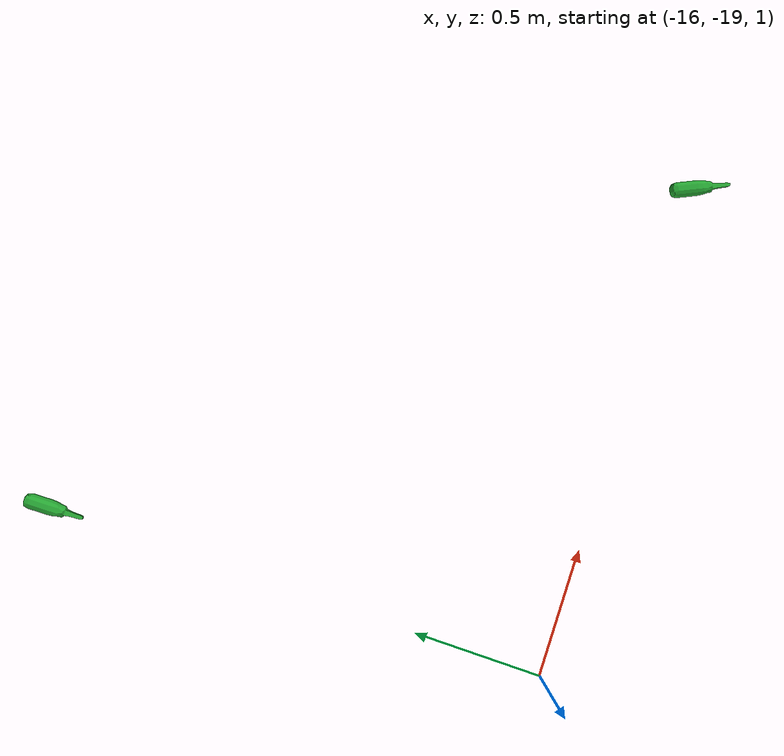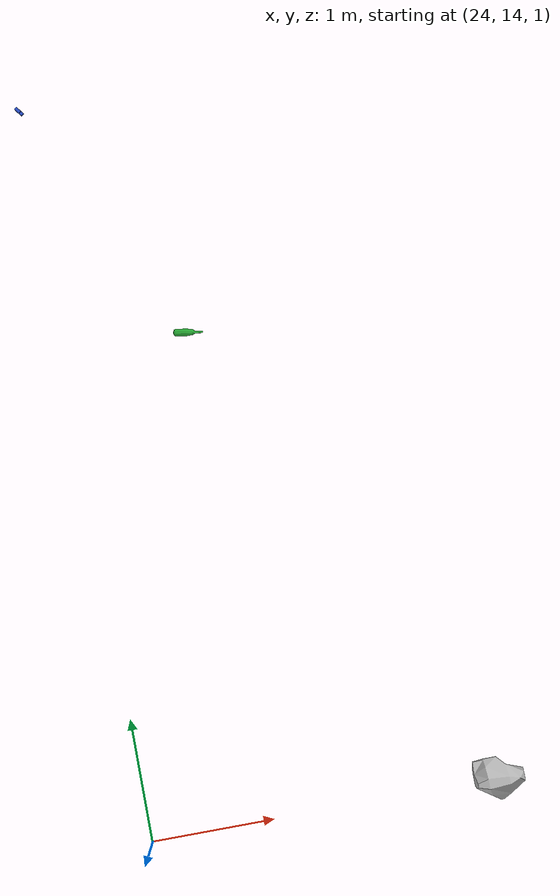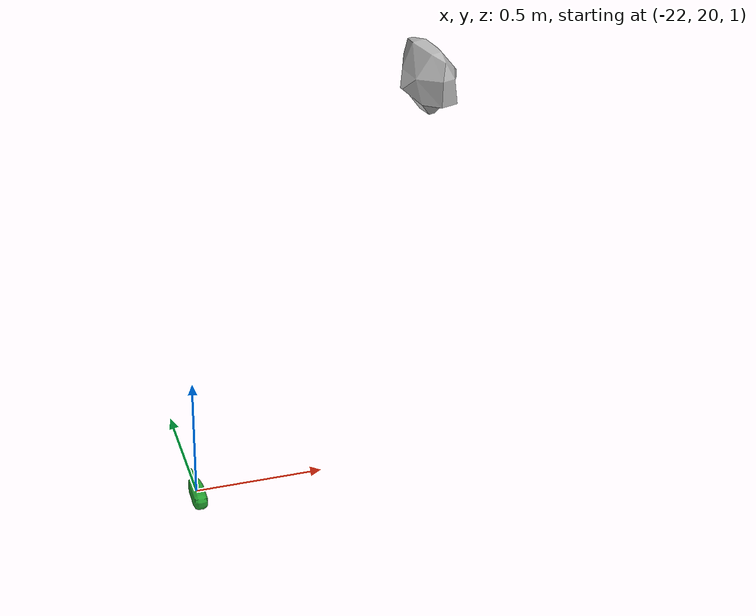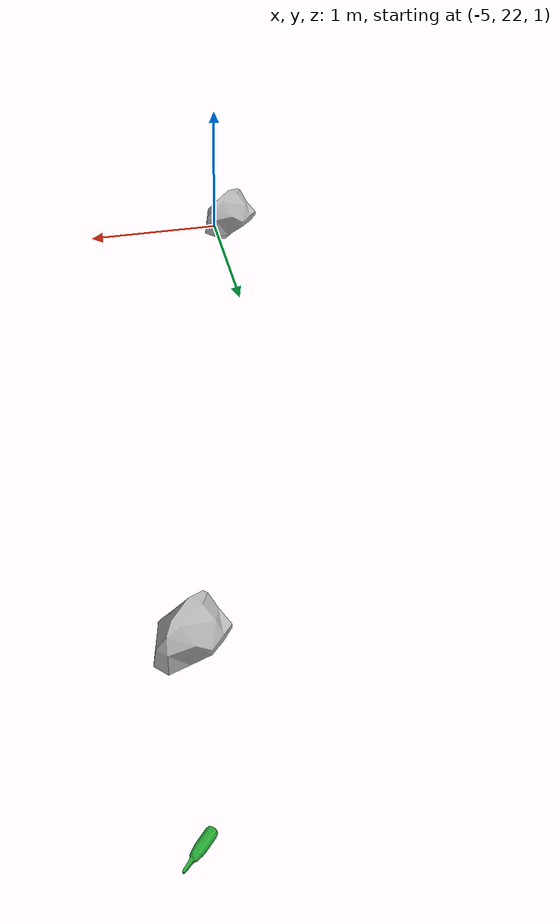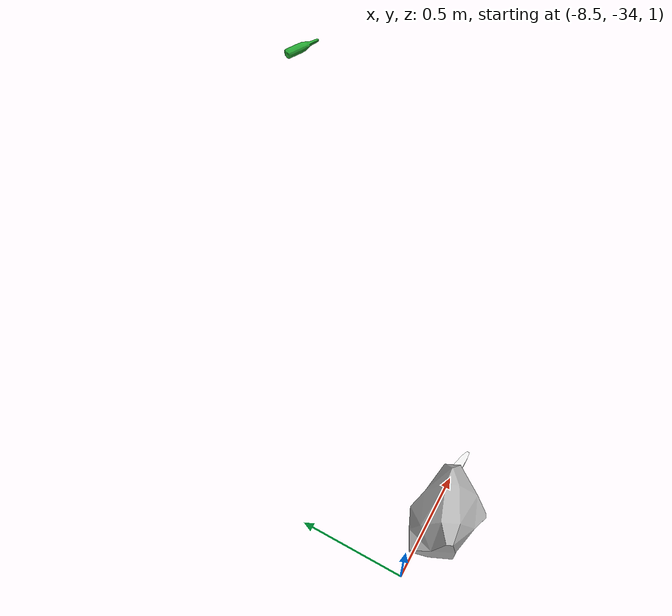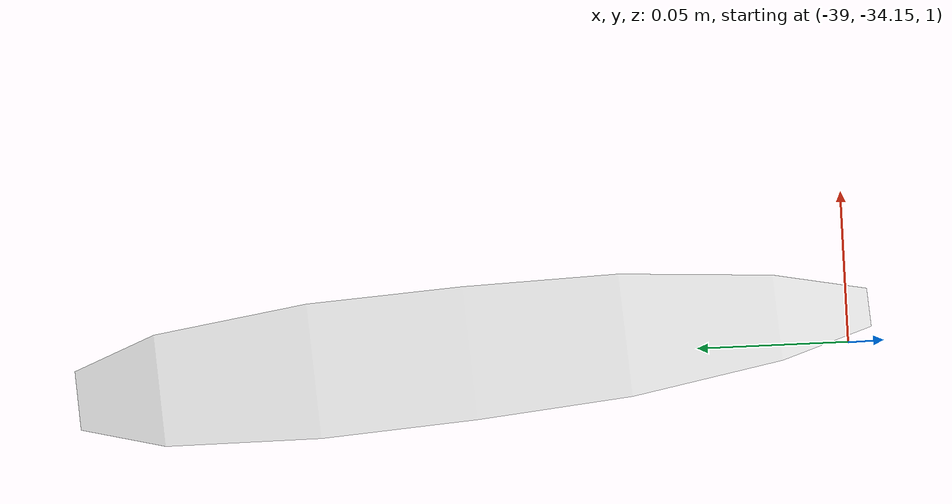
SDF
<sdf version="1.5">
 <world name="default">
  <plugin name="mrs_gazebo_static_transform_republisher_plugin" filename="libMRSGazeboStaticTransformRepublisher.so"/>
  <spherical_coordinates>
   <surface_model>EARTH_WGS84</surface_model>
   <latitude_deg>47.397743</latitude_deg>
   <longitude_deg>8.545594</longitude_deg>
   <elevation>0.0</elevation>
   <heading_deg>0</heading_deg>
  </spherical_coordinates>
  <physics name="default_physics" default="0" type="ode">
   <gravity>0 0 -9.8066</gravity>
   <ode>
    <solver>
     <type>quick</type>
     <iters>10</iters>
     <sor>1.3</sor>
     <use_dynamic_moi_rescaling>0</use_dynamic_moi_rescaling>
    </solver>
    <constraints>
     <cfm>0</cfm>
     <erp>0.2</erp>
     <contact_max_correcting_vel>1000</contact_max_correcting_vel>
     <contact_surface_layer>0.001</contact_surface_layer>
    </constraints>
   </ode>
   <max_step_size>0.004</max_step_size>
   <real_time_factor>1</real_time_factor>
   <real_time_update_rate>250</real_time_update_rate>
   <magnetic_field>6.0e-06 2.3e-05 -4.2e-05</magnetic_field>
  </physics>
  <scene><shadows>false</shadows></scene>
  <light name="sun" type="directional">
   <pose>0 0 1000 0.4 0.2 0</pose>
   <diffuse>1 1 1 1</diffuse>
   <specular>0.6 0.6 0.6 1</specular>
   <direction>0.1 0.1 -0.9</direction>
   <attenuation>
    <range>20</range>
    <constant>0.5</constant>
    <linear>0.01</linear>
    <quadratic>0.001</quadratic>
   </attenuation>
  </light>
  <model name="beer_bottle0">
   <include><pose>20 49 1 0 0 3.1209347730689068</pose><uri>model://beer_bottle</uri></include>
  </model>
  <model name="beer_bottle1">
   <include><pose>-23 -11 1 0 0 0.3927485435783449</pose><uri>model://beer_bottle</uri></include>
  </model>
  <model name="beer_bottle2">
   <include><pose>45 -20 1 0 0 2.5747872808612793</pose><uri>model://beer_bottle</uri></include>
  </model>
  <model name="garbage_bag3">
   <include><pose>-20 12 1 0 0 2.893891805564797</pose><uri>model://garbage_bag</uri></include>
  </model>
  <model name="beer_bottle4">
   <include><pose>-25 -4 1 0 0 2.683935660186889</pose><uri>model://beer_bottle</uri></include>
  </model>
  <model name="water_bottle5">
   <include><pose>43 21 1 0 0 1.658593494858779</pose><uri>model://water_bottle</uri></include>
  </model>
  <model name="water_bottle6">
   <include><pose>15 -24 1 0 0 1.1939238312960105</pose><uri>model://water_bottle</uri></include>
  </model>
  <model name="square_bottle8">
   <include><pose>-3 -9 1 0 0 0.1757621866718275</pose><uri>model://square_bottle</uri></include>
  </model>
  <model name="garbage_bag9">
   <include><pose>-11 -28 1 0 0 2.4726652131046083</pose><uri>model://garbage_bag</uri></include>
  </model>
  <model name="square_bottle11">
   <include><pose>42 -34 1 0 0 0.5826221775698819</pose><uri>model://square_bottle</uri></include>
  </model>
  <model name="square_bottle12">
   <include><pose>22 0 1 0 0 0.281635884052757</pose><uri>model://square_bottle</uri></include>
  </model>
  <model name="square_bottle13">
   <include><pose>-1 -43 1 0 0 0.8318527948555375</pose><uri>model://square_bottle</uri></include>
  </model>
  <model name="beer_bottle14">
   <include><pose>-22 20 1 0 0 3.1188005985428195</pose><uri>model://beer_bottle</uri></include>
  </model>
  <model name="beer_bottle18">
   <include><pose>-6 -32 1 0 0 1.0530476603353502</pose><uri>model://beer_bottle</uri></include>
  </model>
  <model name="beer_bottle19">
   <include><pose>16 -2 1 0 0 3.040233229886099</pose><uri>model://beer_bottle</uri></include>
  </model>
  <model name="water_bottle20">
   <include><pose>-8 -10 1 0 0 1.0551384054782451</pose><uri>model://water_bottle</uri></include>
  </model>
  <model name="beer_bottle21">
   <include><pose>45 -27 1 0 0 0.6283860850827534</pose><uri>model://beer_bottle</uri></include>
  </model>
  <model name="water_bottle22">
   <include><pose>10 -5 1 0 0 0.20319344728700292</pose><uri>model://water_bottle</uri></include>
  </model>
  <model name="square_bottle23">
   <include><pose>28 4 1 0 0 0.6554712263748955</pose><uri>model://square_bottle</uri></include>
  </model>
  <model name="square_bottle24">
   <include><pose>28 27 1 0 0 1.82500525330692</pose><uri>model://square_bottle</uri></include>
  </model>
  <model name="water_bottle25">
   <include><pose>-3 -45 1 0 0 2.141007884112902</pose><uri>model://water_bottle</uri></include>
  </model>
  <model name="garbage_bag26">
   <include><pose>-36 -46 1 0 0 2.134094357378648</pose><uri>model://garbage_bag</uri></include>
  </model>
  <model name="garbage_bag27">
   <include><pose>44 -27 1 0 0 1.3322604280223378</pose><uri>model://garbage_bag</uri></include>
  </model>
  <model name="garbage_bag28">
   <include><pose>44 36 1 0 0 2.4994560293213195</pose><uri>model://garbage_bag</uri></include>
  </model>
  <model name="beer_bottle29">
   <include><pose>6 13 1 0 0 1.0781471434117222</pose><uri>model://beer_bottle</uri></include>
  </model>
  <model name="water_bottle30">
   <include><pose>38 6 1 0 0 1.6966047613166393</pose><uri>model://water_bottle</uri></include>
  </model>
  <model name="beer_bottle31">
   <include><pose>47 28 1 0 0 2.1193420301451575</pose><uri>model://beer_bottle</uri></include>
  </model>
  <model name="square_bottle32">
   <include><pose>46 -42 1 0 0 3.0298758637969194</pose><uri>model://square_bottle</uri></include>
  </model>
  <model name="garbage_bag33">
   <include><pose>-32 37 1 0 0 2.9900939225866834</pose><uri>model://garbage_bag</uri></include>
  </model>
  <model name="garbage_bag35">
   <include><pose>35 7 1 0 0 0.17664908638743462</pose><uri>model://garbage_bag</uri></include>
  </model>
  <model name="square_bottle36">
   <include><pose>5 -5 1 0 0 2.6095723016762493</pose><uri>model://square_bottle</uri></include>
  </model>
  <model name="garbage_bag37">
   <include><pose>27 14 1 0 0 1.59267994072806</pose><uri>model://garbage_bag</uri></include>
  </model>
  <model name="water_bottle38">
   <include><pose>8 25 1 0 0 2.9440034216710873</pose><uri>model://water_bottle</uri></include>
  </model>
  <model name="beer_bottle39">
   <include><pose>46 -16 1 0 0 0.5197149637752395</pose><uri>model://beer_bottle</uri></include>
  </model>
  <model name="garbage_bag40">
   <include><pose>-13 12 1 0 0 0.8626547360418555</pose><uri>model://garbage_bag</uri></include>
  </model>
  <model name="garbage_bag43">
   <include><pose>-20 -6 1 0 0 2.2274009543436164</pose><uri>model://garbage_bag</uri></include>
  </model>
  <model name="beer_bottle45">
   <include><pose>1 -6 1 0 0 0.8285315636171758</pose><uri>model://beer_bottle</uri></include>
  </model>
  <model name="square_bottle46">
   <include><pose>-35 -15 1 0 0 1.7970755280669966</pose><uri>model://square_bottle</uri></include>
  </model>
  <model name="water_bottle47">
   <include><pose>28 -44 1 0 0 2.834338550183277</pose><uri>model://water_bottle</uri></include>
  </model>
  <model name="beer_bottle48">
   <include><pose>-14 -19 1 0 0 0.432293532338644</pose><uri>model://beer_bottle</uri></include>
  </model>
  <model name="beer_bottle50">
   <include><pose>7 26 1 0 0 2.369271377111833</pose><uri>model://beer_bottle</uri></include>
  </model>
  <model name="beer_bottle52">
   <include><pose>-20 33 1 0 0 2.0780104231728793</pose><uri>model://beer_bottle</uri></include>
  </model>
  <model name="square_bottle53">
   <include><pose>-8 -48 1 0 0 1.4991598689136745</pose><uri>model://square_bottle</uri></include>
  </model>
  <model name="beer_bottle54">
   <include><pose>36 -1 1 0 0 2.605969026599928</pose><uri>model://beer_bottle</uri></include>
  </model>
  <model name="garbage_bag55">
   <include><pose>-20 23 1 0 0 0.29019291250490403</pose><uri>model://garbage_bag</uri></include>
  </model>
  <model name="garbage_bag56">
   <include><pose>-21 -17 1 0 0 2.032533283769458</pose><uri>model://garbage_bag</uri></include>
  </model>
  <model name="water_bottle57">
   <include><pose>16 0 1 0 0 0.34275953944218124</pose><uri>model://water_bottle</uri></include>
  </model>
  <model name="water_bottle58">
   <include><pose>-44 -47 1 0 0 0.47241889600739656</pose><uri>model://water_bottle</uri></include>
  </model>
  <model name="square_bottle59">
   <include><pose>-36 44 1 0 0 2.090955569896062</pose><uri>model://square_bottle</uri></include>
  </model>
  <model name="beer_bottle60">
   <include><pose>32 -26 1 0 0 2.8366880190063584</pose><uri>model://beer_bottle</uri></include>
  </model>
  <model name="beer_bottle61">
   <include><pose>8 -31 1 0 0 0.798531776213525</pose><uri>model://beer_bottle</uri></include>
  </model>
  <model name="square_bottle63">
   <include><pose>-1 -26 1 0 0 2.6287443163953568</pose><uri>model://square_bottle</uri></include>
  </model>
  <model name="beer_bottle64">
   <include><pose>39 44 1 0 0 0.16587190858068232</pose><uri>model://beer_bottle</uri></include>
  </model>
  <model name="garbage_bag65">
   <include><pose>-14 4 1 0 0 1.3946817379955503</pose><uri>model://garbage_bag</uri></include>
  </model>
  <model name="square_bottle66">
   <include><pose>20 12 1 0 0 2.2196398707061835</pose><uri>model://square_bottle</uri></include>
  </model>
  <model name="water_bottle67">
   <include><pose>-45 -17 1 0 0 1.4861487057320162</pose><uri>model://water_bottle</uri></include>
  </model>
  <model name="garbage_bag68">
   <include><pose>19 -39 1 0 0 2.175152728427776</pose><uri>model://garbage_bag</uri></include>
  </model>
  <model name="water_bottle69">
   <include><pose>-39 -34 1 0 0 0.07110334107633179</pose><uri>model://water_bottle</uri></include>
  </model>
  <model name="square_bottle70">
   <include><pose>46 19 1 0 0 2.196298151478278</pose><uri>model://square_bottle</uri></include>
  </model>
  <model name="square_bottle71">
   <include><pose>6 38 1 0 0 1.6970005204392105</pose><uri>model://square_bottle</uri></include>
  </model>
  <model name="square_bottle72">
   <include><pose>2 39 1 0 0 1.91396034796763</pose><uri>model://square_bottle</uri></include>
  </model>
  <model name="beer_bottle73">
   <include><pose>-35 -28 1 0 0 2.1257011056072983</pose><uri>model://beer_bottle</uri></include>
  </model>
  <model name="garbage_bag76">
   <include><pose>-8 -34 1 0 0 1.9883728642925076</pose><uri>model://garbage_bag</uri></include>
  </model>
  <model name="square_bottle77">
   <include><pose>35 28 1 0 0 1.430821194601361</pose><uri>model://square_bottle</uri></include>
  </model>
  <model name="square_bottle78">
   <include><pose>23 -34 1 0 0 2.4298735103237386</pose><uri>model://square_bottle</uri></include>
  </model>
  <model name="square_bottle80">
   <include><pose>48 45 1 0 0 2.7404891672218987</pose><uri>model://square_bottle</uri></include>
  </model>
  <model name="beer_bottle81">
   <include><pose>-44 -2 1 0 0 1.1882987941944383</pose><uri>model://beer_bottle</uri></include>
  </model>
  <model name="square_bottle82">
   <include><pose>36 -35 1 0 0 0.12506083175555177</pose><uri>model://square_bottle</uri></include>
  </model>
  <model name="water_bottle83">
   <include><pose>41 27 1 0 0 2.717212674576285</pose><uri>model://water_bottle</uri></include>
  </model>
  <model name="garbage_bag84">
   <include><pose>-13 5 1 0 0 2.715559826273308</pose><uri>model://garbage_bag</uri></include>
  </model>
  <model name="garbage_bag85">
   <include><pose>-5 22 1 0 0 2.362439038797039</pose><uri>model://garbage_bag</uri></include>
  </model>
  <model name="water_bottle86">
   <include><pose>-8 -34 1 0 0 1.4203391390981102</pose><uri>model://water_bottle</uri></include>
  </model>
  <model name="garbage_bag87">
   <include><pose>-4 26 1 0 0 2.3730539964930433</pose><uri>model://garbage_bag</uri></include>
  </model>
  <model name="beer_bottle88">
   <include><pose>33 -15 1 0 0 2.5267935417784892</pose><uri>model://beer_bottle</uri></include>
  </model>
  <model name="square_bottle89">
   <include><pose>-40 47 1 0 0 2.6374905948617426</pose><uri>model://square_bottle</uri></include>
  </model>
  <model name="beer_bottle90">
   <include><pose>-16 -17 1 0 0 0.016326573216871493</pose><uri>model://beer_bottle</uri></include>
  </model>
  <model name="square_bottle91">
   <include><pose>24 20 1 0 0 0.6547731868881174</pose><uri>model://square_bottle</uri></include>
  </model>
  <model name="beer_bottle92">
   <include><pose>25 18 1 0 0 1.4178427853715763</pose><uri>model://beer_bottle</uri></include>
  </model>
  <model name="square_bottle93">
   <include><pose>8 -43 1 0 0 2.5390674356181826</pose><uri>model://square_bottle</uri></include>
  </model>
  <model name="garbage_bag94">
   <include><pose>-46 14 1 0 0 2.3871333756384656</pose><uri>model://garbage_bag</uri></include>
  </model>
  <model name="garbage_bag96">
   <include><pose>-39 -7 1 0 0 0.26130426134513873</pose><uri>model://garbage_bag</uri></include>
  </model>
  <model name="garbage_bag97">
   <include><pose>26 7 1 0 0 1.3957929655729995</pose><uri>model://garbage_bag</uri></include>
  </model>
  <model name="water_bottle98">
   <include><pose>49 44 1 0 0 1.2959991338418713</pose><uri>model://water_bottle</uri></include>
  </model>
  <model name="beer_bottle99">
   <include><pose>-4 27 1 0 0 2.348634923756744</pose><uri>model://beer_bottle</uri></include>
  </model>
  <include><uri>model://platform</uri><pose>0 0 0.5 1.5708 0 0</pose></include>
 </world>
</sdf>

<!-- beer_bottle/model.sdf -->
<sdf version='1.7'>
  <model name='beer_bottle'>

    <plugin name="hydrodynamics" filename="libHydrodynamicsPlugin.so">
      <!-- Wave Model -->
      <wave_model>ocean_waves</wave_model>

      <!-- Hydrodynamics -->
      <damping_on>true</damping_on>
      <viscous_drag_on>true</viscous_drag_on>
      <pressure_drag_on>true</pressure_drag_on>

      <!-- Markers -->
      <markers>
        <update_rate>30</update_rate>
        <water_patch>false</water_patch>
        <waterline>false</waterline>
        <underwater_surface>false</underwater_surface>
      </markers>
    </plugin>

    <link name='link'>
      <inertial>
        <mass>0.25</mass>
        <inertia>
          <ixx>0.1636</ixx>
          <ixy>0.0</ixy>
          <ixz>0.0</ixz>
          <iyy>0.1636</iyy>
          <iyz>0.0</iyz>
          <izz>0.1636</izz>
        </inertia>
      </inertial>
      <pose>0 0 0 0 -0 0</pose>
      <visual name='visual'>
        <pose>0 0 0 0 -0 0</pose>
        <geometry>
          <mesh>
            <uri>model://beer_bottle/meshes/beer_bottle.obj</uri>
            <scale>1 1 1</scale>
          </mesh>
        </geometry>
        <material>
          <lighting>1</lighting>
          <script>
            <uri>file://media/materials/scripts/gazebo.material</uri>
            <name>Gazebo/Green</name>
          </script>
        </material>
        <transparency>0.1</transparency>
        <cast_shadows>1</cast_shadows>
      </visual>
      <collision name="base_collision">
        <pose>0 0 0 -1.5708 0 0</pose>
        <geometry>
          <box>
            <size>1 1 1</size>
          </box>
        </geometry>
      </collision>
    </link>
    <static>0</static>
    <allow_auto_disable>1</allow_auto_disable>
  </model>
</sdf>

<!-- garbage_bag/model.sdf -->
<sdf version='1.7'>
  <model name='garbage_bag'>

    <plugin name="hydrodynamics" filename="libHydrodynamicsPlugin.so">
      <!-- Wave Model -->
      <wave_model>ocean_waves</wave_model>

      <!-- Hydrodynamics -->
      <damping_on>true</damping_on>
      <viscous_drag_on>true</viscous_drag_on>
      <pressure_drag_on>true</pressure_drag_on>

      <!-- Markers -->
      <markers>
        <update_rate>30</update_rate>
        <water_patch>false</water_patch>
        <waterline>false</waterline>
        <underwater_surface>false</underwater_surface>
      </markers>
    </plugin>

    <link name='link'>
      <inertial>
        <mass>0.25</mass>
        <inertia>
          <ixx>0.166667</ixx>
          <ixy>0</ixy>
          <ixz>0</ixz>
          <iyy>0.166667</iyy>
          <iyz>0</iyz>
          <izz>0.166667</izz>
        </inertia>
      </inertial>
      <pose>0 0 0 0 -0 0</pose>
      <visual name='visual'>
        <pose>0 0 0 0 -0 0</pose>
        <geometry>
          <mesh>
            <uri>model://garbage_bag/meshes/garbage_bag.obj</uri>
            <scale>1 1 1</scale>
          </mesh>
        </geometry>
        <transparency>0</transparency>
        <cast_shadows>1</cast_shadows>
      </visual>
      <collision name='collision'>
        <laser_retro>0</laser_retro>
        <max_contacts>10</max_contacts>
        <pose>0 0 0 -1.5708 -0 0</pose>
        <geometry>
          <mesh>
            <uri>model://garbage_bag/meshes/garbage_bag.stl</uri>
            <scale>1 1 1</scale>
          </mesh>
        </geometry>
        <surface>
          <friction>
            <ode>
              <mu>1</mu>
              <mu2>1</mu2>
              <fdir1>0 0 0</fdir1>
              <slip1>0</slip1>
              <slip2>0</slip2>
            </ode>
            <torsional>
              <coefficient>1</coefficient>
              <patch_radius>0</patch_radius>
              <surface_radius>0</surface_radius>
              <use_patch_radius>1</use_patch_radius>
              <ode>
                <slip>0</slip>
              </ode>
            </torsional>
          </friction>
          <bounce>
            <restitution_coefficient>0</restitution_coefficient>
            <threshold>1e+06</threshold>
          </bounce>
          <contact>
            <collide_without_contact>0</collide_without_contact>
            <collide_without_contact_bitmask>1</collide_without_contact_bitmask>
            <collide_bitmask>1</collide_bitmask>
            <ode>
              <soft_cfm>0</soft_cfm>
              <soft_erp>0.2</soft_erp>
              <kp>1e+13</kp>
              <kd>1</kd>
              <max_vel>0.01</max_vel>
              <min_depth>0</min_depth>
            </ode>
            <bullet>
              <split_impulse>1</split_impulse>
              <split_impulse_penetration_threshold>-0.01</split_impulse_penetration_threshold>
              <soft_cfm>0</soft_cfm>
              <soft_erp>0.2</soft_erp>
              <kp>1e+13</kp>
              <kd>1</kd>
            </bullet>
          </contact>
        </surface>
      </collision>
    </link>
    <static>0</static>
    <allow_auto_disable>1</allow_auto_disable>
  </model>
</sdf>

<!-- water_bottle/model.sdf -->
<sdf version='1.7'>
  <model name='water_bottle'>

    <plugin name="hydrodynamics" filename="libHydrodynamicsPlugin.so">
      <!-- Wave Model -->
      <wave_model>ocean_waves</wave_model>

      <!-- Hydrodynamics -->
      <damping_on>true</damping_on>
      <viscous_drag_on>true</viscous_drag_on>
      <pressure_drag_on>true</pressure_drag_on>

      <!-- Markers -->
      <markers>
        <update_rate>30</update_rate>
        <water_patch>false</water_patch>
        <waterline>false</waterline>
        <underwater_surface>false</underwater_surface>
      </markers>
    </plugin>

    <link name='link'>
      <inertial>
        <mass>0.25</mass>
        <inertia>
          <ixx>0.166667</ixx>
          <ixy>0</ixy>
          <ixz>0</ixz>
          <iyy>0.166667</iyy>
          <iyz>0</iyz>
          <izz>0.166667</izz>
        </inertia>
      </inertial>
      <pose>0 0 0 0 -0 0</pose>
      <visual name='visual'>
        <pose>0 0 0 0 -0 0</pose>
        <geometry>
          <mesh>
            <uri>model://water_bottle/meshes/water_bottle.obj</uri>
            <scale>1 1 1</scale>
          </mesh>
        </geometry>
        <material>
          <lighting>1</lighting>
          <script>
            <uri>file://media/materials/scripts/gazebo.material</uri>
            <name>Gazebo/White</name>
          </script>
          <shader type='pixel'/>
        </material>
        <transparency>0</transparency>
        <cast_shadows>1</cast_shadows>
      </visual>
      <collision name='collision'>
        <laser_retro>0</laser_retro>
        <max_contacts>10</max_contacts>
        <pose>0 0 0 -1.5708 -0 0</pose>
        <geometry>
          <box>
            <size>1 1 1</size>
          </box>
        </geometry>
        <surface>
          <friction>
            <ode>
              <mu>1</mu>
              <mu2>1</mu2>
              <fdir1>0 0 0</fdir1>
              <slip1>0</slip1>
              <slip2>0</slip2>
            </ode>
            <torsional>
              <coefficient>1</coefficient>
              <patch_radius>0</patch_radius>
              <surface_radius>0</surface_radius>
              <use_patch_radius>1</use_patch_radius>
              <ode>
                <slip>0</slip>
              </ode>
            </torsional>
          </friction>
          <bounce>
            <restitution_coefficient>0</restitution_coefficient>
            <threshold>1e+06</threshold>
          </bounce>
          <contact>
            <collide_without_contact>0</collide_without_contact>
            <collide_without_contact_bitmask>1</collide_without_contact_bitmask>
            <collide_bitmask>1</collide_bitmask>
            <ode>
              <soft_cfm>0</soft_cfm>
              <soft_erp>0.2</soft_erp>
              <kp>1e+13</kp>
              <kd>1</kd>
              <max_vel>0.01</max_vel>
              <min_depth>0</min_depth>
            </ode>
            <bullet>
              <split_impulse>1</split_impulse>
              <split_impulse_penetration_threshold>-0.01</split_impulse_penetration_threshold>
              <soft_cfm>0</soft_cfm>
              <soft_erp>0.2</soft_erp>
              <kp>1e+13</kp>
              <kd>1</kd>
            </bullet>
          </contact>
        </surface>
      </collision>
    </link>
    <static>0</static>
    <allow_auto_disable>1</allow_auto_disable>
  </model>
</sdf>

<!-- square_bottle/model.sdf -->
<sdf version='1.7'>
  <model name='square_bottle'>

    <plugin name="hydrodynamics" filename="libHydrodynamicsPlugin.so">
      <!-- Wave Model -->
      <wave_model>ocean_waves</wave_model>

      <!-- Hydrodynamics -->
      <damping_on>true</damping_on>
      <viscous_drag_on>true</viscous_drag_on>
      <pressure_drag_on>true</pressure_drag_on>

      <!-- Markers -->
      <markers>
        <update_rate>30</update_rate>
        <water_patch>false</water_patch>
        <waterline>false</waterline>
        <underwater_surface>false</underwater_surface>
      </markers>
    </plugin>

    <link name='link'>
      <inertial>
        <mass>0.05</mass>
        <inertia>
          <ixx>0.166667</ixx>
          <ixy>0</ixy>
          <ixz>0</ixz>
          <iyy>0.166667</iyy>
          <iyz>0</iyz>
          <izz>0.166667</izz>
        </inertia>
      </inertial>
      <pose>0 0 0 0 -0 0</pose>
      <visual name='visual'>
        <pose>0 0 0 0 -0 0</pose>
        <geometry>
          <mesh>
            <uri>model://square_bottle/meshes/square_bottle.obj</uri>
            <scale>1 1 1</scale>
          </mesh>
        </geometry>
        <material>
          <lighting>1</lighting>
          <script>
            <uri>file://media/materials/scripts/gazebo.material</uri>
            <name>Gazebo/Blue</name>
          </script>
          <shader type='pixel'/>
        </material>
        <transparency>0</transparency>
        <cast_shadows>1</cast_shadows>
      </visual>
      <collision name='collision'>
        <laser_retro>0</laser_retro>
        <max_contacts>10</max_contacts>
        <pose>0 0 0 -1.5708 -0 0</pose>
        <geometry>
          <box>
            <size>1 1 1</size>
          </box>
        </geometry>
        <surface>
          <friction>
            <ode>
              <mu>1</mu>
              <mu2>1</mu2>
              <fdir1>0 0 0</fdir1>
              <slip1>0</slip1>
              <slip2>0</slip2>
            </ode>
            <torsional>
              <coefficient>1</coefficient>
              <patch_radius>0</patch_radius>
              <surface_radius>0</surface_radius>
              <use_patch_radius>1</use_patch_radius>
              <ode>
                <slip>0</slip>
              </ode>
            </torsional>
          </friction>
          <bounce>
            <restitution_coefficient>0</restitution_coefficient>
            <threshold>1e+06</threshold>
          </bounce>
          <contact>
            <collide_without_contact>0</collide_without_contact>
            <collide_without_contact_bitmask>1</collide_without_contact_bitmask>
            <collide_bitmask>1</collide_bitmask>
            <ode>
              <soft_cfm>0</soft_cfm>
              <soft_erp>0.2</soft_erp>
              <kp>1e+13</kp>
              <kd>1</kd>
              <max_vel>0.01</max_vel>
              <min_depth>0</min_depth>
            </ode>
            <bullet>
              <split_impulse>1</split_impulse>
              <split_impulse_penetration_threshold>-0.01</split_impulse_penetration_threshold>
              <soft_cfm>0</soft_cfm>
              <soft_erp>0.2</soft_erp>
              <kp>1e+13</kp>
              <kd>1</kd>
            </bullet>
          </contact>
        </surface>
      </collision>
    </link>
    <static>0</static>
    <allow_auto_disable>1</allow_auto_disable>
  </model>
</sdf>

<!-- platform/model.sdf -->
<sdf version='1.6'>
  <model name='platform'>
    <link name='link'>
      <inertial>
        <mass>20</mass>
        <inertia>
          <ixx>0.166667</ixx>
          <ixy>0</ixy>
          <ixz>0</ixz>
          <iyy>0.166667</iyy>
          <iyz>0</iyz>
          <izz>0.166667</izz>
        </inertia>
      </inertial>
      <pose frame=''>0 0 0 0 -0 0</pose>
      <visual name='visual'>
        <pose frame=''>0 0 0 0 -0 0</pose>
        <geometry>
          <mesh>
            <uri>model://platform/meshes/platform.obj</uri>
            <scale>1.0 1.0 1.0</scale>
          </mesh>
        </geometry>
        <transparency>0</transparency>
        <cast_shadows>1</cast_shadows>
      </visual>
      <collision name='collision'>
        <laser_retro>0</laser_retro>
        <max_contacts>100</max_contacts>
        <pose frame=''>0 0 0 0 -0 0</pose>
        <geometry>
          <mesh>
            <uri>model://platform/meshes/platform.obj</uri>
            <scale>1.0 1.0 1.0</scale>
          </mesh>
        </geometry>
        <surface>
          <friction>
            <ode>
              <mu>100</mu>
              <mu2>100</mu2>
              <fdir1>0 0 0</fdir1>
              <slip1>0</slip1>
              <slip2>0</slip2>
            </ode>
            <torsional>
              <coefficient>1</coefficient>
              <patch_radius>1</patch_radius>
              <surface_radius>1</surface_radius>
              <use_patch_radius>1</use_patch_radius>
              <ode>
                <slip>0</slip>
              </ode>
            </torsional>
          </friction>
          <bounce>
            <restitution_coefficient>1</restitution_coefficient>
            <threshold>1e+06</threshold>
          </bounce>
          <contact>
            <collide_without_contact>0</collide_without_contact>
            <collide_without_contact_bitmask>1</collide_without_contact_bitmask>
            <collide_bitmask>1</collide_bitmask>
            <ode>
              <soft_cfm>0</soft_cfm>
              <soft_erp>0.2</soft_erp>
              <kp>1e+13</kp>
              <kd>1</kd>
              <max_vel>0.01</max_vel>
              <min_depth>0</min_depth>
            </ode>
            <bullet>
              <split_impulse>1</split_impulse>
              <split_impulse_penetration_threshold>-0.01</split_impulse_penetration_threshold>
              <soft_cfm>0</soft_cfm>
              <soft_erp>0.2</soft_erp>
              <kp>1e+13</kp>
              <kd>1</kd>
            </bullet>
          </contact>
        </surface>
      </collision>
    </link>
    <static>1</static>
    <allow_auto_disable>1</allow_auto_disable>
  </model>
</sdf>
